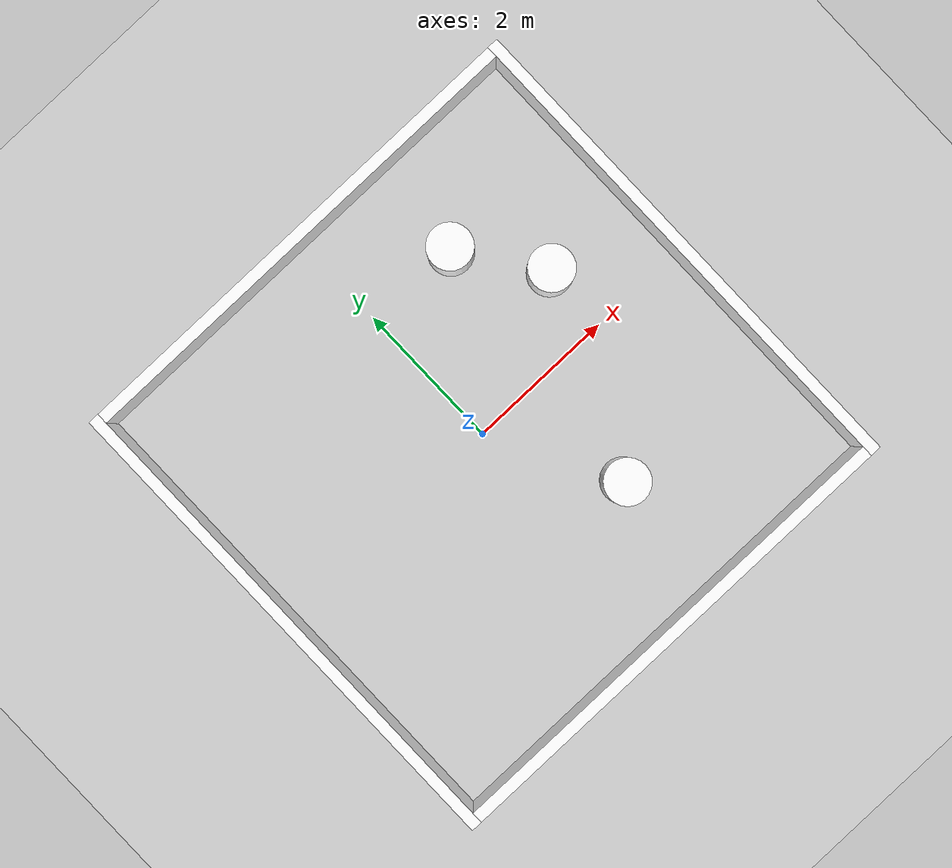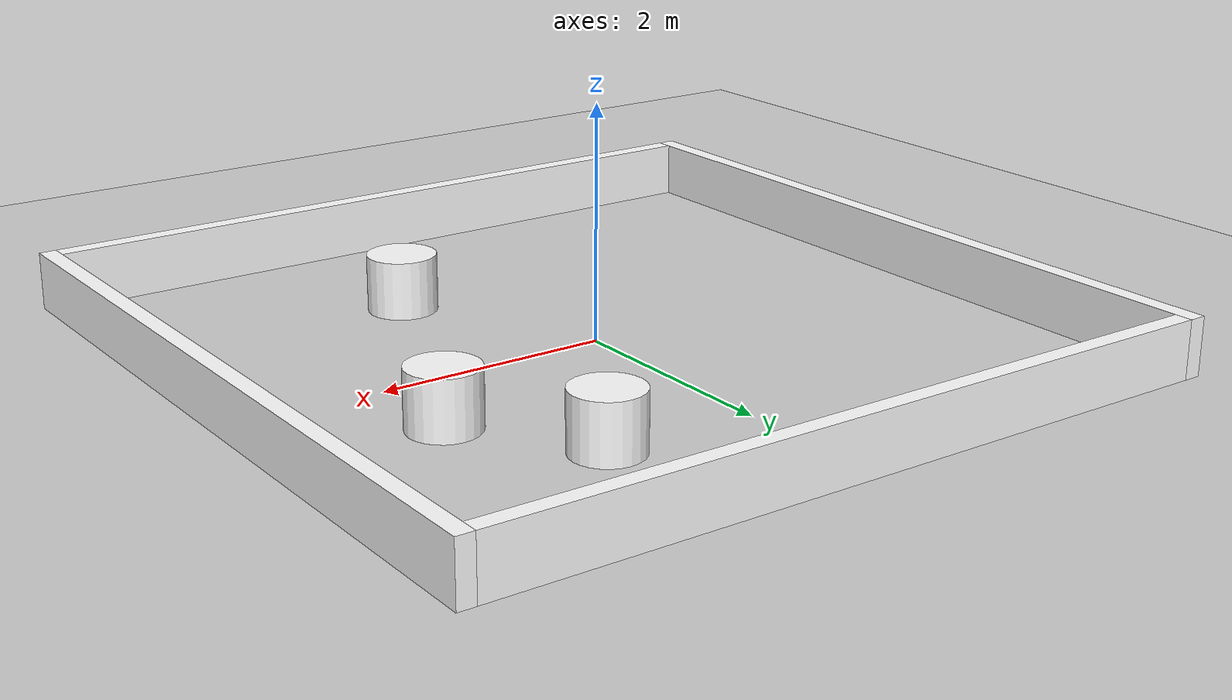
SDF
<sdf version="1.6">
 <world name="default">
  <light name="sun" type="directional">
   <pose>0 0 10 0 -0 0</pose>
   <diffuse>0.8 0.8 0.8 1</diffuse>
   <specular>0.2 0.2 0.2 1</specular>
   <attenuation>
    <range>1000</range>
    <constant>0.9</constant>
    <linear>0.01</linear>
    <quadratic>0.001</quadratic>
   </attenuation>
   <direction>-0.5 0.1 -0.9</direction>
  </light>
  <model name="ground_plane">
   <static>1</static>
   <link name="link">
    <collision name="collision">
     <geometry><plane><normal>0 0 1</normal><size>100 100</size></plane></geometry>
     <surface>
      <contact><collide_bitmask>65535</collide_bitmask></contact>
      <friction><ode><mu>100</mu><mu2>50</mu2></ode></friction>
     </surface>
    </collision>
    <visual name="visual">
     <cast_shadows>0</cast_shadows>
     <geometry><plane><normal>0 0 1</normal><size>100 100</size></plane></geometry>
     <material>
      <script><uri>file://media/materials/scripts/gazebo.material</uri><name>Gazebo/Grey</name></script>
     </material>
    </visual>
   </link>
  </model>
  <gravity>0 0 -9.8</gravity>
  <magnetic_field>6e-06 2.3e-05 -4.2e-05</magnetic_field>
  <atmosphere type="adiabatic"/>
  <physics name="default_physics" default="0" type="ode">
   <max_step_size>0.001</max_step_size>
   <real_time_factor>1</real_time_factor>
   <real_time_update_rate>1000</real_time_update_rate>
  </physics>
  <scene><ambient>0.4 0.4 0.4 1</ambient><background>0.7 0.7 0.7 1</background><shadows>1</shadows></scene>
  <audio><device>default</device></audio>
  <spherical_coordinates>
   <surface_model>EARTH_WGS84</surface_model>
   <latitude_deg>0</latitude_deg>
   <longitude_deg>0</longitude_deg>
   <elevation>0</elevation>
   <heading_deg>0</heading_deg>
  </spherical_coordinates>
  <model name="cyl">
   <link name="Cylinder_1">
    <collision name="Cylinder_1_Collision">
     <geometry><cylinder><radius>0.3</radius><length>0.5</length></cylinder></geometry>
     <pose>0 0 0.25 0 -0 0</pose>
    </collision>
    <visual name="Cylinder_1_Visual">
     <pose>0 0 0.25 0 -0 0</pose>
     <geometry><cylinder><radius>0.3</radius><length>0.5</length></cylinder></geometry>
     <material><ambient>1 1 1 1</ambient></material>
    </visual>
    <inertial>
     <inertia><ixx>1</ixx><ixy>0</ixy><ixz>0</ixz><iyy>1</iyy><iyz>0</iyz><izz>1</izz></inertia>
     <mass>1</mass>
    </inertial>
   </link>
   <pose>1.27275 1.932 -0 -0 -0 -0</pose>
  </model>
  <model name="cyl_2">
   <link name="Cylinder_1">
    <collision name="Cylinder_1_Collision">
     <geometry><cylinder><radius>0.3</radius><length>0.5</length></cylinder></geometry>
     <pose>0 0 0.25 0 -0 0</pose>
    </collision>
    <visual name="Cylinder_1_Visual">
     <pose>0 0 0.25 0 -0 0</pose>
     <geometry><cylinder><radius>0.3</radius><length>0.5</length></cylinder></geometry>
     <material><ambient>1 1 1 1</ambient></material>
    </visual>
    <inertial>
     <inertia><ixx>1</ixx><ixy>0</ixy><ixz>0</ixz><iyy>1</iyy><iyz>0</iyz><izz>1</izz></inertia>
     <mass>1</mass>
    </inertial>
   </link>
   <pose>0.887284 -1.6291 -0 0 -0 0</pose>
  </model>
  <model name="cyl_0">
   <link name="Cylinder_1">
    <collision name="Cylinder_1_Collision">
     <geometry><cylinder><radius>0.3</radius><length>0.5</length></cylinder></geometry>
     <pose>0 0 0.25 0 -0 0</pose>
    </collision>
    <visual name="Cylinder_1_Visual">
     <pose>0 0 0.25 0 -0 0</pose>
     <geometry><cylinder><radius>0.3</radius><length>0.5</length></cylinder></geometry>
     <material><ambient>1 1 1 1</ambient></material>
    </visual>
    <inertial>
     <inertia><ixx>1</ixx><ixy>0</ixy><ixz>0</ixz><iyy>1</iyy><iyz>0</iyz><izz>1</izz></inertia>
     <mass>1</mass>
    </inertial>
   </link>
   <pose>1.99622 0.894124 -0 0 -0 0</pose>
  </model>
  <model name="simple">
   <link name="fixed"/>
   <pose>0.012255 -0.02451 0 0 -0 0</pose>
   <link name="Wall_0">
    <collision name="Wall_0_Collision">
     <geometry><box><size>6.5 0.15 0.5</size></box></geometry>
     <pose>0 1.25 0.25 0 -0 0</pose>
    </collision>
    <visual name="Wall_0_Visual">
     <pose>0 1.25 0.25 0 -0 0</pose>
     <geometry><box><size>6.5 0.15 0.5</size></box></geometry>
     <material><ambient>1 1 1 1</ambient></material>
    </visual>
    <pose>0 2.075 0 0 -0 0</pose>
   </link>
   <link name="Wall_2">
    <collision name="Wall_2_Collision">
     <geometry><box><size>6.8 0.15 0.5</size></box></geometry>
     <pose>0 0 0.25 0 -0 0</pose>
    </collision>
    <visual name="Wall_2_Visual">
     <pose>0 -1.25 0.25 0 -0 0</pose>
     <geometry><box><size>6.8 0.15 0.5</size></box></geometry>
     <material><ambient>1 1 1 1</ambient></material>
    </visual>
    <pose>-2.075 0 0 0 0 -1.5708</pose>
   </link>
   <link name="Wall_3">
    <collision name="Wall_3_Collision">
     <geometry><box><size>6.5 0.15 0.5</size></box></geometry>
     <pose>0 -1.25 0.25 0 -0 0</pose>
    </collision>
    <visual name="Wall_3_Visual">
     <pose>0 -1.25 0.25 0 -0 0</pose>
     <geometry><box><size>6.5 0.15 0.5</size></box></geometry>
     <material><ambient>1 1 1 1</ambient></material>
    </visual>
    <pose>0 -2.075 0 0 -0 0</pose>
   </link>
   <link name="Wall_4">
    <collision name="Wall_4_Collision">
     <geometry><box><size>6.8 0.15 0.5</size></box></geometry>
     <pose>0 -1.25 0.25 0 -0 0</pose>
    </collision>
    <visual name="Wall_4_Visual">
     <pose>0 -1.25 0.25 0 -0 0</pose>
     <geometry><box><size>6.8 0.15 0.5</size></box></geometry>
     <material><ambient>1 1 1 1</ambient></material>
    </visual>
    <pose>2.075 0 0 0 -0 1.5708</pose>
   </link>
   <static>1</static>
  </model>
 </world>
</sdf>
